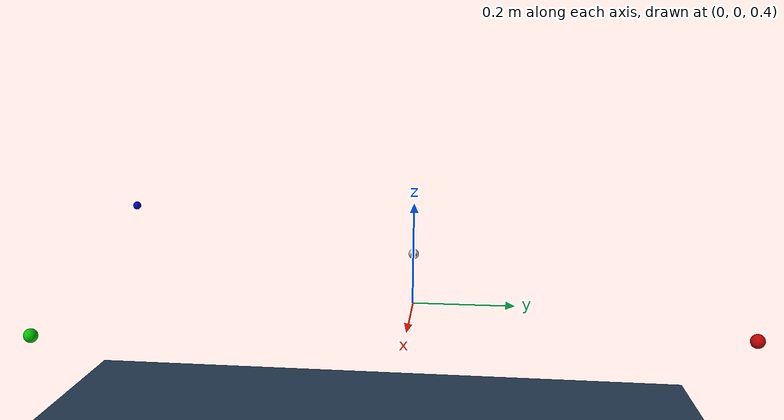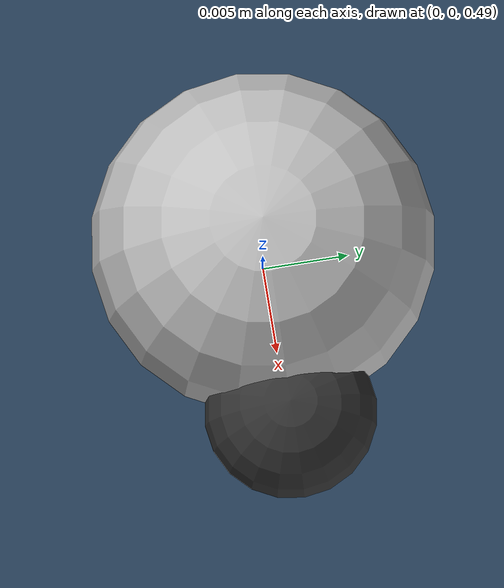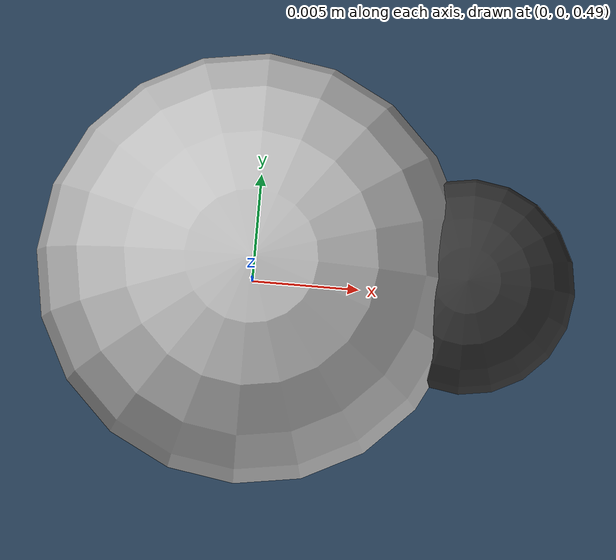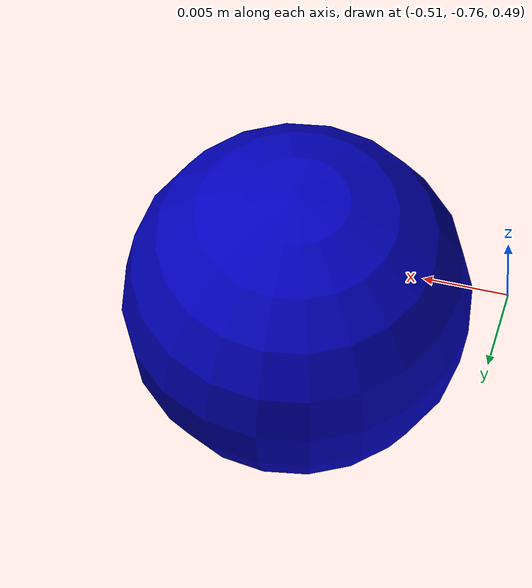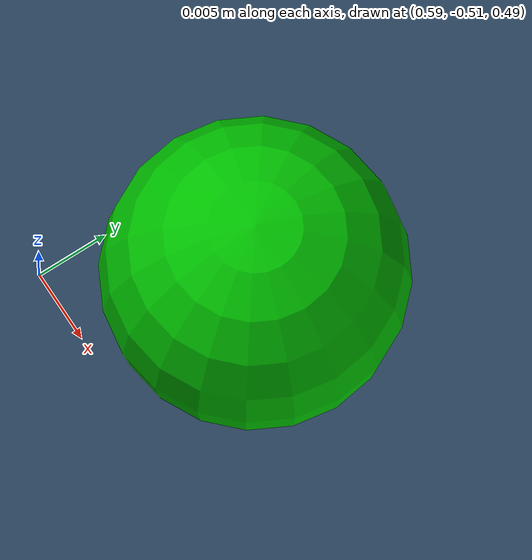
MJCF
<mujoco model="ball2d_tracking">
    <compiler angle="radian" meshdir="assets" autolimits="true" />

    <visual>
        <headlight diffuse="0.6 0.6 0.6" ambient="0.3 0.3 0.3" specular="0 0 0" />
        <rgba haze="0.15 0.25 0.35 1" />
        <global azimuth="120" elevation="-20" />
        <scale framelength="10.0" />
    </visual>

    <default>
        <default class="ball2d_tracking">
            <material specular="0.5" shininess="0.25" />
            <general dyntype="none" biastype="affine" ctrlrange="-2.8973 2.8973" forcerange="-87 87" />
            <default class="visual">
                <geom contype="0" conaffinity="0" group="2" />
            </default>
            <default class="collision">
                <geom condim="4" />
            </default>
        </default>
    </default>

    <asset>
        <material class="ball2d_tracking" name="white" rgba="1 1 1 1" />
        <material class="ball2d_tracking" name="off_white" rgba="0.75 0.75 0.75 1" />
        <material class="ball2d_tracking" name="dark" specular="0" shininess="0.25"
            rgba="0.2 0.2 0.2 1" />

        <texture type="skybox" builtin="gradient" rgb1="0.3 0.5 0.7" rgb2="0 0 0" width="512"
            height="3072" />
        <texture type="2d" name="groundplane" builtin="checker" mark="edge" rgb1="0.2 0.3 0.4"
            rgb2="0.1 0.2 0.3"
            markrgb="0.8 0.8 0.8" width="300" height="300" />
        <material name="groundplane" texture="groundplane" texuniform="true" texrepeat="5 5"
            reflectance="0.2" />
    </asset>

    <worldbody>
        <light pos="0 0 1.5" dir="0 0 -1" directional="true" />
        <geom name="floor" size="0 0 0.05" type="plane" material="groundplane" />

        <body name="ball_link1" pos="0.0 0.0 0.5">
            <joint name="ball_joint1" axis="1 0 0" type="slide" />
            <joint name="ball_joint2" axis="0 1 0" type="slide" />
            <joint name="ball_joint3" axis="0 0 1" />
            <geom name="actor_visual_geom1" type="sphere" size="0.01 0.01 0.01"
                material="off_white" class="visual" />
            <geom name="actor_collision_geom1" type="sphere" size="0.005 0.005 0.005"
                class="collision"
                material="white" />
            <body name="ball_link2" pos="0.01 0.0 0.0">
                <geom name="actor_visual_geom2" type="sphere" size="0.005 0.005 0.005"
                    material="dark" class="visual" />
                <geom name="actor_collision_geom2" type="sphere" size="0.002 0.002 0.002"
                    class="collision" material="white" />
            </body>
        </body>

        <body name="landmark1_link" pos="0.5 0.5 0.5">
            <geom name="landmark1_geom" size="0.01 0.01 0.01" rgba="0.75 0.0 0.0 1" />
        </body>

        <body name="landmark2_link" pos="0.6 -0.5 0.5">
            <geom name="landmark2_geom" size="0.01 0.01 0.01" rgba="0.0 0.75 0.0 1" />
        </body>

        <body name="landmark3_link" pos="-0.5 -0.75 0.5">
            <geom name="landmark3_geom" size="0.01 0.01 0.01" rgba="0.0 0.0 0.75 1" />
        </body>

    </worldbody>

</mujoco>
